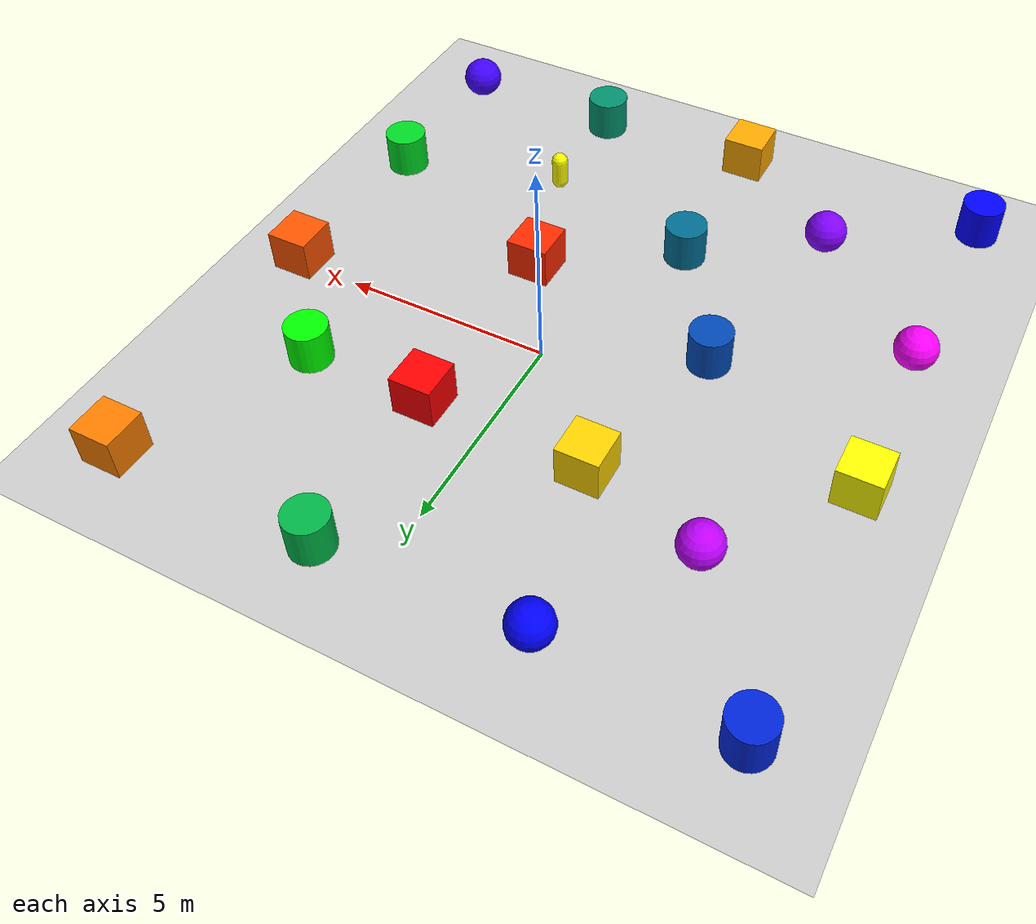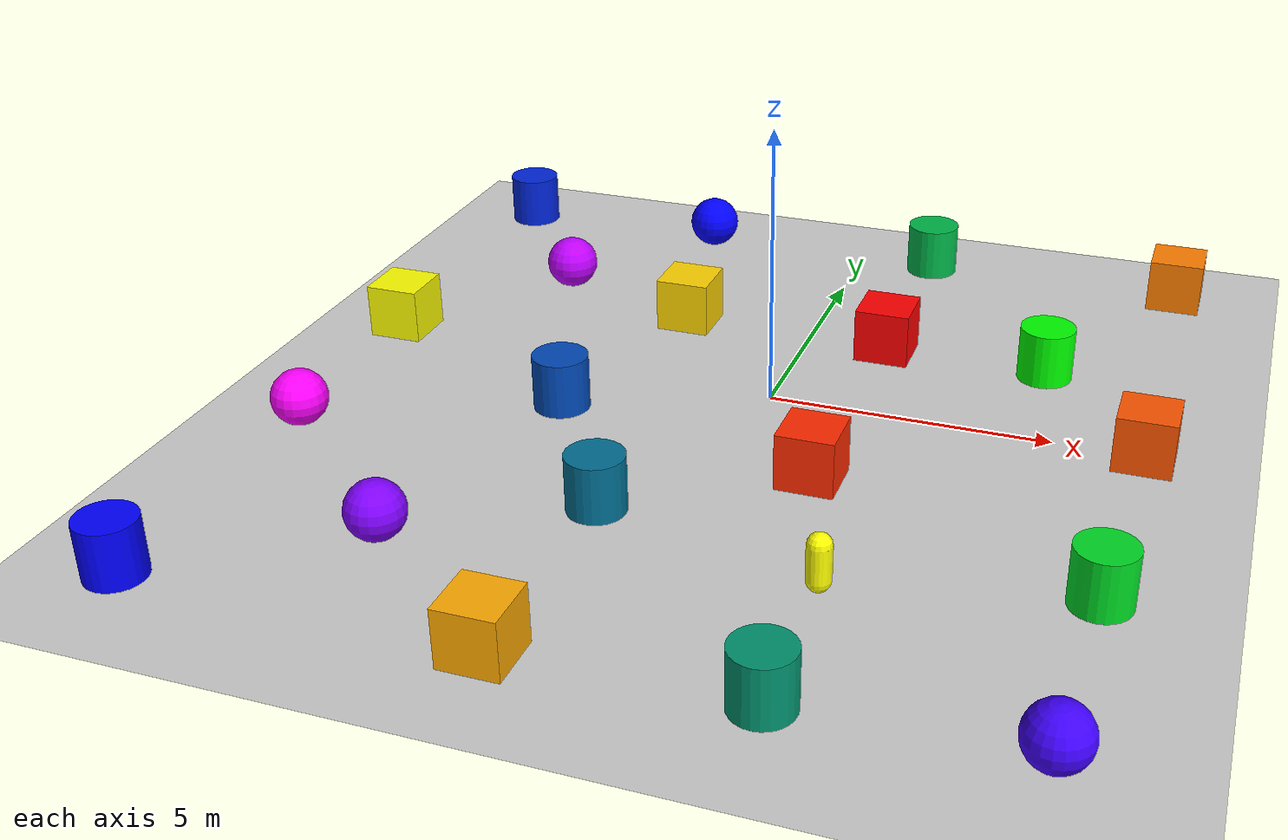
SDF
<?xml version="1.0"?>
<sdf version='1.9'>
  <world name='empty'>
    <physics name='1ms' type='ignored'>
      <max_step_size>0.001</max_step_size>
      <real_time_factor>1.0</real_time_factor>
      <real_time_update_rate>1000</real_time_update_rate>
    </physics>
    <plugin name='ignition::gazebo::systems::Physics' filename='libignition-gazebo-physics-system.so'/>
    <plugin name='ignition::gazebo::systems::UserCommands' filename='libignition-gazebo-user-commands-system.so'/>
    <plugin name='ignition::gazebo::systems::SceneBroadcaster' filename='libignition-gazebo-scene-broadcaster-system.so'/>
    <plugin name='ignition::gazebo::systems::Sensors' filename='libignition-gazebo-sensors-system.so'>
      <render_engine>ogre2</render_engine>
    </plugin>
    <plugin name='ignition::gazebo::systems::Imu' filename='libignition-gazebo-imu-system.so'/>
    <plugin name='ignition::gazebo::systems::Contact' filename='libignition-gazebo-contact-system.so'/>
    <gravity>0 0 -9.8</gravity>
    <magnetic_field>6e-06 2.3e-05 -4.2e-05</magnetic_field>
    <atmosphere type='adiabatic'/>
    <scene>
      <ambient>0.4 0.4 0.4 1</ambient>
      <background>0.7 0.7 0.7 1</background>
      <shadows>true</shadows>
    </scene>
    <model name='ground_plane'>
      <static>true</static>
      <link name='link'>
        <collision name='collision'>
          <geometry>
            <plane>
              <normal>0 0 1</normal>
              <size>100 100</size>
            </plane>
          </geometry>
          <surface>
            <friction>
              <ode/>
            </friction>
            <bounce/>
            <contact/>
          </surface>
        </collision>
        <visual name='visual'>
          <geometry>
            <plane>
              <normal>0 0 1</normal>
              <size>100 100</size>
            </plane>
          </geometry>
          <material>
            <ambient>0.8 0.8 0.8 1</ambient>
            <diffuse>0.8 0.8 0.8 1</diffuse>
            <specular>0.8 0.8 0.8 1</specular>
          </material>
        </visual>
        <pose>0 0 0 0 -0 0</pose>
        <inertial>
          <pose>0 0 0 0 -0 0</pose>
          <mass>1</mass>
          <inertia>
            <ixx>1</ixx>
            <ixy>0</ixy>
            <ixz>0</ixz>
            <iyy>1</iyy>
            <iyz>0</iyz>
            <izz>1</izz>
          </inertia>
        </inertial>
        <enable_wind>false</enable_wind>
      </link>
      <pose>0 0 0 0 -0 0</pose>
      <self_collide>false</self_collide>
    </model>
    <model name='box'>
      <pose>1.51163 2.42865 0.5 0 0 -0</pose>
      <link name='box_link'>
        <inertial>
          <inertia>
            <ixx>0.16666</ixx>
            <ixy>0</ixy>
            <ixz>0</ixz>
            <iyy>0.16666</iyy>
            <iyz>0</iyz>
            <izz>0.16666</izz>
          </inertia>
          <mass>1</mass>
          <pose>0 0 0 0 -0 0</pose>
        </inertial>
        <collision name='box_collision'>
          <geometry>
            <box>
              <size>1 1 1</size>
            </box>
          </geometry>
          <surface>
            <friction>
              <ode/>
            </friction>
            <bounce/>
            <contact/>
          </surface>
        </collision>
        <visual name='box_visual'>
          <geometry>
            <box>
              <size>1 1 1</size>
            </box>
          </geometry>
          <material>
            <ambient>1 0 0 1</ambient>
            <diffuse>1 0 0 1</diffuse>
            <specular>1 1 1 1</specular>
          </material>
        </visual>
        <pose>0 0 0 0 -0 0</pose>
        <enable_wind>false</enable_wind>
      </link>
      <static>false</static>
      <self_collide>false</self_collide>
    </model>
    <model name='box_0'>
      <pose>1.46819 -2.47228 0.5 0 0 -0</pose>
      <link name='box_link'>
        <inertial>
          <inertia>
            <ixx>0.16666</ixx>
            <ixy>0</ixy>
            <ixz>0</ixz>
            <iyy>0.16666</iyy>
            <iyz>0</iyz>
            <izz>0.16666</izz>
          </inertia>
          <mass>1</mass>
          <pose>0 0 0 0 -0 0</pose>
        </inertial>
        <collision name='box_collision'>
          <geometry>
            <box>
              <size>1 1 1</size>
            </box>
          </geometry>
          <surface>
            <friction>
              <ode/>
            </friction>
            <bounce/>
            <contact/>
          </surface>
        </collision>
        <visual name='box_visual'>
          <geometry>
            <box>
              <size>1 1 1</size>
            </box>
          </geometry>
          <material>
            <ambient>1 0.1667 0 1</ambient>
            <diffuse>1 0.1667 0 1</diffuse>
            <specular>1 1 1 1</specular>
          </material>
        </visual>
        <pose>0 0 0 0 -0 0</pose>
        <enable_wind>false</enable_wind>
      </link>
      <static>false</static>
      <self_collide>false</self_collide>
    </model>
    <model name='cylinder'>
      <pose>4.47957 2.41239 0.499999 -0 0 -0</pose>
      <link name='cylinder_link'>
        <inertial>
          <inertia>
            <ixx>0.14580000000000001</ixx>
            <ixy>0</ixy>
            <ixz>0</ixz>
            <iyy>0.14580000000000001</iyy>
            <iyz>0</iyz>
            <izz>0.125</izz>
          </inertia>
          <mass>1</mass>
          <pose>0 0 0 0 -0 0</pose>
        </inertial>
        <collision name='cylinder_collision'>
          <geometry>
            <cylinder>
              <radius>0.5</radius>
              <length>1</length>
            </cylinder>
          </geometry>
          <surface>
            <friction>
              <ode/>
            </friction>
            <bounce/>
            <contact/>
          </surface>
        </collision>
        <visual name='cylinder_visual'>
          <geometry>
            <cylinder>
              <radius>0.5</radius>
              <length>1</length>
            </cylinder>
          </geometry>
          <material>
            <ambient>0 1 0 1</ambient>
            <diffuse>0 1 0 1</diffuse>
            <specular>1 1 1 1</specular>
          </material>
        </visual>
        <pose>0 0 0 0 -0 0</pose>
        <enable_wind>false</enable_wind>
      </link>
      <static>false</static>
      <self_collide>false</self_collide>
    </model>
    <model name='box_1'>
      <pose>6.54148 -0.137706 0.5 0 0 -0</pose>
      <link name='box_link'>
        <inertial>
          <inertia>
            <ixx>0.16666</ixx>
            <ixy>0</ixy>
            <ixz>0</ixz>
            <iyy>0.16666</iyy>
            <iyz>0</iyz>
            <izz>0.16666</izz>
          </inertia>
          <mass>1</mass>
          <pose>0 0 0 0 -0 0</pose>
        </inertial>
        <collision name='box_collision'>
          <geometry>
            <box>
              <size>1 1 1</size>
            </box>
          </geometry>
          <surface>
            <friction>
              <ode/>
            </friction>
            <bounce/>
            <contact/>
          </surface>
        </collision>
        <visual name='box_visual'>
          <geometry>
            <box>
              <size>1 1 1</size>
            </box>
          </geometry>
          <material>
            <ambient>1 0.3333 0 1</ambient>
            <diffuse>1 0.3333 0 1</diffuse>
            <specular>1 1 1 1</specular>
          </material>
        </visual>
        <pose>0 0 0 0 -0 0</pose>
        <enable_wind>false</enable_wind>
      </link>
      <static>false</static>
      <self_collide>false</self_collide>
    </model>
    <model name='cylinder_0'>
      <pose>6.38648 -4.48019 0.499999 0 0 -0</pose>
      <link name='cylinder_link'>
        <inertial>
          <inertia>
            <ixx>0.14580000000000001</ixx>
            <ixy>0</ixy>
            <ixz>0</ixz>
            <iyy>0.14580000000000001</iyy>
            <iyz>0</iyz>
            <izz>0.125</izz>
          </inertia>
          <mass>1</mass>
          <pose>0 0 0 0 -0 0</pose>
        </inertial>
        <collision name='cylinder_collision'>
          <geometry>
            <cylinder>
              <radius>0.5</radius>
              <length>1</length>
            </cylinder>
          </geometry>
          <surface>
            <friction>
              <ode/>
            </friction>
            <bounce/>
            <contact/>
          </surface>
        </collision>
        <visual name='cylinder_visual'>
          <geometry>
            <cylinder>
              <radius>0.5</radius>
              <length>1</length>
            </cylinder>
          </geometry>
          <material>
            <ambient>0 0.8571 0.1429 1</ambient>
            <diffuse>0 0.8571 0.1429 1</diffuse>
            <specular>1 1 1 1</specular>
          </material>
        </visual>
        <pose>0 0 0 0 -0 0</pose>
        <enable_wind>false</enable_wind>
      </link>
      <static>false</static>
      <self_collide>false</self_collide>
    </model>
    <model name='box_2'>
      <pose>6.42284 6.47971 0.5 0 0 -0</pose>
      <link name='box_link'>
        <inertial>
          <inertia>
            <ixx>0.16666</ixx>
            <ixy>0</ixy>
            <ixz>0</ixz>
            <iyy>0.16666</iyy>
            <iyz>0</iyz>
            <izz>0.16666</izz>
          </inertia>
          <mass>1</mass>
          <pose>0 0 0 0 -0 0</pose>
        </inertial>
        <collision name='box_collision'>
          <geometry>
            <box>
              <size>1 1 1</size>
            </box>
          </geometry>
          <surface>
            <friction>
              <ode/>
            </friction>
            <bounce/>
            <contact/>
          </surface>
        </collision>
        <visual name='box_visual'>
          <geometry>
            <box>
              <size>1 1 1</size>
            </box>
          </geometry>
          <material>
            <ambient>1 0.5 0 1</ambient>
            <diffuse>1 0.5 0 1</diffuse>
            <specular>1 1 1 1</specular>
          </material>
        </visual>
        <pose>0 0 0 0 -0 0</pose>
        <enable_wind>false</enable_wind>
      </link>
      <static>false</static>
      <self_collide>false</self_collide>
    </model>
    <model name='cylinder_1'>
      <pose>1.47891 6.52709 0.499999 0 0 0</pose>
      <link name='cylinder_link'>
        <inertial>
          <inertia>
            <ixx>0.14580000000000001</ixx>
            <ixy>0</ixy>
            <ixz>0</ixz>
            <iyy>0.14580000000000001</iyy>
            <iyz>0</iyz>
            <izz>0.125</izz>
          </inertia>
          <mass>1</mass>
          <pose>0 0 0 0 -0 0</pose>
        </inertial>
        <collision name='cylinder_collision'>
          <geometry>
            <cylinder>
              <radius>0.5</radius>
              <length>1</length>
            </cylinder>
          </geometry>
          <surface>
            <friction>
              <ode/>
            </friction>
            <bounce/>
            <contact/>
          </surface>
        </collision>
        <visual name='cylinder_visual'>
          <geometry>
            <cylinder>
              <radius>0.5</radius>
              <length>1</length>
            </cylinder>
          </geometry>
          <material>
            <ambient>0 0.7143 0.2857 1</ambient>
            <diffuse>0 0.7143 0.2857 1</diffuse>
            <specular>1 1 1 1</specular>
          </material>
        </visual>
        <pose>0 0 0 0 -0 0</pose>
        <enable_wind>false</enable_wind>
      </link>
      <static>false</static>
      <self_collide>false</self_collide>
    </model>
    <model name='sphere'>
      <pose>-3.2681 6.40084 0.5 0 -0 0</pose>
      <link name='sphere_link'>
        <inertial>
          <inertia>
            <ixx>0.10000000000000001</ixx>
            <ixy>0</ixy>
            <ixz>0</ixz>
            <iyy>0.10000000000000001</iyy>
            <iyz>0</iyz>
            <izz>0.10000000000000001</izz>
          </inertia>
          <mass>1</mass>
          <pose>0 0 0 0 -0 0</pose>
        </inertial>
        <collision name='sphere_collision'>
          <geometry>
            <sphere>
              <radius>0.5</radius>
            </sphere>
          </geometry>
          <surface>
            <friction>
              <ode/>
            </friction>
            <bounce/>
            <contact/>
          </surface>
        </collision>
        <visual name='sphere_visual'>
          <geometry>
            <sphere>
              <radius>0.5</radius>
            </sphere>
          </geometry>
          <material>
            <ambient>0 0 1 1</ambient>
            <diffuse>0 0 1 1</diffuse>
            <specular>1 1 1 1</specular>
          </material>
        </visual>
        <pose>0 0 0 0 -0 0</pose>
        <enable_wind>false</enable_wind>
      </link>
      <static>false</static>
      <self_collide>false</self_collide>
    </model>
    <model name='sphere_0'>
      <pose>6.30164 -8.20064 0.5 0 -0 0</pose>
      <link name='sphere_link'>
        <inertial>
          <inertia>
            <ixx>0.10000000000000001</ixx>
            <ixy>0</ixy>
            <ixz>0</ixz>
            <iyy>0.10000000000000001</iyy>
            <iyz>0</iyz>
            <izz>0.10000000000000001</izz>
          </inertia>
          <mass>1</mass>
          <pose>0 0 0 0 -0 0</pose>
        </inertial>
        <collision name='sphere_collision'>
          <geometry>
            <sphere>
              <radius>0.5</radius>
            </sphere>
          </geometry>
          <surface>
            <friction>
              <ode/>
            </friction>
            <bounce/>
            <contact/>
          </surface>
        </collision>
        <visual name='sphere_visual'>
          <geometry>
            <sphere>
              <radius>0.5</radius>
            </sphere>
          </geometry>
          <material>
            <ambient>0.25 0 1 1</ambient>
            <diffuse>0.25 0 1 1</diffuse>
            <specular>1 1 1 1</specular>
          </material>
        </visual>
        <pose>0 0 0 0 -0 0</pose>
        <enable_wind>false</enable_wind>
      </link>
      <static>false</static>
      <self_collide>false</self_collide>
    </model>
    <model name='cylinder_2'>
      <pose>2.47302 -8.27325 0.499999 0 0 -0</pose>
      <link name='cylinder_link'>
        <inertial>
          <inertia>
            <ixx>0.14580000000000001</ixx>
            <ixy>0</ixy>
            <ixz>0</ixz>
            <iyy>0.14580000000000001</iyy>
            <iyz>0</iyz>
            <izz>0.125</izz>
          </inertia>
          <mass>1</mass>
          <pose>0 0 0 0 -0 0</pose>
        </inertial>
        <collision name='cylinder_collision'>
          <geometry>
            <cylinder>
              <radius>0.5</radius>
              <length>1</length>
            </cylinder>
          </geometry>
          <surface>
            <friction>
              <ode/>
            </friction>
            <bounce/>
            <contact/>
          </surface>
        </collision>
        <visual name='cylinder_visual'>
          <geometry>
            <cylinder>
              <radius>0.5</radius>
              <length>1</length>
            </cylinder>
          </geometry>
          <material>
            <ambient>0 0.5714 0.4286 1</ambient>
            <diffuse>0 0.5714 0.4286 1</diffuse>
            <specular>1 1 1 1</specular>
          </material>
        </visual>
        <pose>0 0 0 0 -0 0</pose>
        <enable_wind>false</enable_wind>
      </link>
      <static>false</static>
      <self_collide>false</self_collide>
    </model>
    <model name='box_3'>
      <pose>-1.50587 -8.44194 0.5 0 0 -0</pose>
      <link name='box_link'>
        <inertial>
          <inertia>
            <ixx>0.16666</ixx>
            <ixy>0</ixy>
            <ixz>0</ixz>
            <iyy>0.16666</iyy>
            <iyz>0</iyz>
            <izz>0.16666</izz>
          </inertia>
          <mass>1</mass>
          <pose>0 0 0 0 -0 0</pose>
        </inertial>
        <collision name='box_collision'>
          <geometry>
            <box>
              <size>1 1 1</size>
            </box>
          </geometry>
          <surface>
            <friction>
              <ode/>
            </friction>
            <bounce/>
            <contact/>
          </surface>
        </collision>
        <visual name='box_visual'>
          <geometry>
            <box>
              <size>1 1 1</size>
            </box>
          </geometry>
          <material>
            <ambient>1 0.6667 0 1</ambient>
            <diffuse>1 0.6667 0 1</diffuse>
            <specular>1 1 1 1</specular>
          </material>
        </visual>
        <pose>0 0 0 0 -0 0</pose>
        <enable_wind>false</enable_wind>
      </link>
      <static>false</static>
      <self_collide>false</self_collide>
    </model>
    <model name='cylinder_3'>
      <pose>-1.49364 -4.4313 0.499999 0 -0 -0</pose>
      <link name='cylinder_link'>
        <inertial>
          <inertia>
            <ixx>0.14580000000000001</ixx>
            <ixy>0</ixy>
            <ixz>0</ixz>
            <iyy>0.14580000000000001</iyy>
            <iyz>0</iyz>
            <izz>0.125</izz>
          </inertia>
          <mass>1</mass>
          <pose>0 0 0 0 -0 0</pose>
        </inertial>
        <collision name='cylinder_collision'>
          <geometry>
            <cylinder>
              <radius>0.5</radius>
              <length>1</length>
            </cylinder>
          </geometry>
          <surface>
            <friction>
              <ode/>
            </friction>
            <bounce/>
            <contact/>
          </surface>
        </collision>
        <visual name='cylinder_visual'>
          <geometry>
            <cylinder>
              <radius>0.5</radius>
              <length>1</length>
            </cylinder>
          </geometry>
          <material>
            <ambient>0 0.4286 0.5714 1</ambient>
            <diffuse>0 0.4286 0.5714 1</diffuse>
            <specular>1 1 1 1</specular>
          </material>
        </visual>
        <pose>0 0 0 0 -0 0</pose>
        <enable_wind>false</enable_wind>
      </link>
      <static>false</static>
      <self_collide>false</self_collide>
    </model>
    <model name='box_4'>
      <pose>-2.42864 2.52073 0.5 0 0 -0</pose>
      <link name='box_link'>
        <inertial>
          <inertia>
            <ixx>0.16666</ixx>
            <ixy>0</ixy>
            <ixz>0</ixz>
            <iyy>0.16666</iyy>
            <iyz>0</iyz>
            <izz>0.16666</izz>
          </inertia>
          <mass>1</mass>
          <pose>0 0 0 0 -0 0</pose>
        </inertial>
        <collision name='box_collision'>
          <geometry>
            <box>
              <size>1 1 1</size>
            </box>
          </geometry>
          <surface>
            <friction>
              <ode/>
            </friction>
            <bounce/>
            <contact/>
          </surface>
        </collision>
        <visual name='box_visual'>
          <geometry>
            <box>
              <size>1 1 1</size>
            </box>
          </geometry>
          <material>
            <ambient>1 0.8333 0 1</ambient>
            <diffuse>1 0.8333 0 1</diffuse>
            <specular>1 1 1 1</specular>
          </material>
        </visual>
        <pose>0 0 0 0 -0 0</pose>
        <enable_wind>false</enable_wind>
      </link>
      <static>false</static>
      <self_collide>false</self_collide>
    </model>
    <model name='cylinder_4'>
      <pose>-3.4058 -1.44405 0.499999 0 0 -0</pose>
      <link name='cylinder_link'>
        <inertial>
          <inertia>
            <ixx>0.14580000000000001</ixx>
            <ixy>0</ixy>
            <ixz>0</ixz>
            <iyy>0.14580000000000001</iyy>
            <iyz>0</iyz>
            <izz>0.125</izz>
          </inertia>
          <mass>1</mass>
          <pose>0 0 0 0 -0 0</pose>
        </inertial>
        <collision name='cylinder_collision'>
          <geometry>
            <cylinder>
              <radius>0.5</radius>
              <length>1</length>
            </cylinder>
          </geometry>
          <surface>
            <friction>
              <ode/>
            </friction>
            <bounce/>
            <contact/>
          </surface>
        </collision>
        <visual name='cylinder_visual'>
          <geometry>
            <cylinder>
              <radius>0.5</radius>
              <length>1</length>
            </cylinder>
          </geometry>
          <material>
            <ambient>0 0.2857 0.7143 1</ambient>
            <diffuse>0 0.2857 0.7143 1</diffuse>
            <specular>1 1 1 1</specular>
          </material>
        </visual>
        <pose>0 0 0 0 -0 0</pose>
        <enable_wind>false</enable_wind>
      </link>
      <static>false</static>
      <self_collide>false</self_collide>
    </model>
    <model name='sphere_1'>
      <pose>-4.35428 -6.28047 0.5 0 -0 0</pose>
      <link name='sphere_link'>
        <inertial>
          <inertia>
            <ixx>0.10000000000000001</ixx>
            <ixy>0</ixy>
            <ixz>0</ixz>
            <iyy>0.10000000000000001</iyy>
            <iyz>0</iyz>
            <izz>0.10000000000000001</izz>
          </inertia>
          <mass>1</mass>
          <pose>0 0 0 0 -0 0</pose>
        </inertial>
        <collision name='sphere_collision'>
          <geometry>
            <sphere>
              <radius>0.5</radius>
            </sphere>
          </geometry>
          <surface>
            <friction>
              <ode/>
            </friction>
            <bounce/>
            <contact/>
          </surface>
        </collision>
        <visual name='sphere_visual'>
          <geometry>
            <sphere>
              <radius>0.5</radius>
            </sphere>
          </geometry>
          <material>
            <ambient>0.5 0 1 1</ambient>
            <diffuse>0.5 0 1 1</diffuse>
            <specular>1 1 1 1</specular>
          </material>
        </visual>
        <pose>0 0 0 0 -0 0</pose>
        <enable_wind>false</enable_wind>
      </link>
      <static>false</static>
      <self_collide>false</self_collide>
    </model>
    <model name='sphere_2'>
      <pose>-5.29746 3.41684 0.5 0 -0 0</pose>
      <link name='sphere_link'>
        <inertial>
          <inertia>
            <ixx>0.10000000000000001</ixx>
            <ixy>0</ixy>
            <ixz>0</ixz>
            <iyy>0.10000000000000001</iyy>
            <iyz>0</iyz>
            <izz>0.10000000000000001</izz>
          </inertia>
          <mass>1</mass>
          <pose>0 0 0 0 -0 0</pose>
        </inertial>
        <collision name='sphere_collision'>
          <geometry>
            <sphere>
              <radius>0.5</radius>
            </sphere>
          </geometry>
          <surface>
            <friction>
              <ode/>
            </friction>
            <bounce/>
            <contact/>
          </surface>
        </collision>
        <visual name='sphere_visual'>
          <geometry>
            <sphere>
              <radius>0.5</radius>
            </sphere>
          </geometry>
          <material>
            <ambient>0.75 0 1 1</ambient>
            <diffuse>0.75 0 1 1</diffuse>
            <specular>1 1 1 1</specular>
          </material>
        </visual>
        <pose>0 0 0 0 -0 0</pose>
        <enable_wind>false</enable_wind>
      </link>
      <static>false</static>
      <self_collide>false</self_collide>
    </model>
    <model name='cylinder_5'>
      <pose>-7.54056 6.51442 0.499999 -0 -0 -0</pose>
      <link name='cylinder_link'>
        <inertial>
          <inertia>
            <ixx>0.14580000000000001</ixx>
            <ixy>0</ixy>
            <ixz>0</ixz>
            <iyy>0.14580000000000001</iyy>
            <iyz>0</iyz>
            <izz>0.125</izz>
          </inertia>
          <mass>1</mass>
          <pose>0 0 0 0 -0 0</pose>
        </inertial>
        <collision name='cylinder_collision'>
          <geometry>
            <cylinder>
              <radius>0.5</radius>
              <length>1</length>
            </cylinder>
          </geometry>
          <surface>
            <friction>
              <ode/>
            </friction>
            <bounce/>
            <contact/>
          </surface>
        </collision>
        <visual name='cylinder_visual'>
          <geometry>
            <cylinder>
              <radius>0.5</radius>
              <length>1</length>
            </cylinder>
          </geometry>
          <material>
            <ambient>0 0.1429 0.8571 1</ambient>
            <diffuse>0 0.1429 0.8571 1</diffuse>
            <specular>1 1 1 1</specular>
          </material>
        </visual>
        <pose>0 0 0 0 -0 0</pose>
        <enable_wind>false</enable_wind>
      </link>
      <static>false</static>
      <self_collide>false</self_collide>
    </model>
    <model name='cylinder_6'>
      <pose>-7.53135 -8.42408 0.499999 0 0 -0</pose>
      <link name='cylinder_link'>
        <inertial>
          <inertia>
            <ixx>0.14580000000000001</ixx>
            <ixy>0</ixy>
            <ixz>0</ixz>
            <iyy>0.14580000000000001</iyy>
            <iyz>0</iyz>
            <izz>0.125</izz>
          </inertia>
          <mass>1</mass>
          <pose>0 0 0 0 -0 0</pose>
        </inertial>
        <collision name='cylinder_collision'>
          <geometry>
            <cylinder>
              <radius>0.5</radius>
              <length>1</length>
            </cylinder>
          </geometry>
          <surface>
            <friction>
              <ode/>
            </friction>
            <bounce/>
            <contact/>
          </surface>
        </collision>
        <visual name='cylinder_visual'>
          <geometry>
            <cylinder>
              <radius>0.5</radius>
              <length>1</length>
            </cylinder>
          </geometry>
          <material>
            <ambient>0 0 1 1</ambient>
            <diffuse>0 0 1 1</diffuse>
            <specular>1 1 1 1</specular>
          </material>
        </visual>
        <pose>0 0 0 0 -0 0</pose>
        <enable_wind>false</enable_wind>
      </link>
      <static>false</static>
      <self_collide>false</self_collide>
    </model>
    <model name='box_5'>
      <pose>-7.52528 0.490923 0.5 0 0 0</pose>
      <link name='box_link'>
        <inertial>
          <inertia>
            <ixx>0.16666</ixx>
            <ixy>0</ixy>
            <ixz>0</ixz>
            <iyy>0.16666</iyy>
            <iyz>0</iyz>
            <izz>0.16666</izz>
          </inertia>
          <mass>1</mass>
          <pose>0 0 0 0 -0 0</pose>
        </inertial>
        <collision name='box_collision'>
          <geometry>
            <box>
              <size>1 1 1</size>
            </box>
          </geometry>
          <surface>
            <friction>
              <ode/>
            </friction>
            <bounce/>
            <contact/>
          </surface>
        </collision>
        <visual name='box_visual'>
          <geometry>
            <box>
              <size>1 1 1</size>
            </box>
          </geometry>
          <material>
            <ambient>1 1 0 1</ambient>
            <diffuse>1 1 0 1</diffuse>
            <specular>1 1 1 1</specular>
          </material>
        </visual>
        <pose>0 0 0 0 -0 0</pose>
        <enable_wind>false</enable_wind>
      </link>
      <static>false</static>
      <self_collide>false</self_collide>
    </model>
    <model name='sphere_3'>
      <pose>-7.41768 -3.46443 0.5 0 -0 0</pose>
      <link name='sphere_link'>
        <inertial>
          <inertia>
            <ixx>0.10000000000000001</ixx>
            <ixy>0</ixy>
            <ixz>0</ixz>
            <iyy>0.10000000000000001</iyy>
            <iyz>0</iyz>
            <izz>0.10000000000000001</izz>
          </inertia>
          <mass>1</mass>
          <pose>0 0 0 0 -0 0</pose>
        </inertial>
        <collision name='sphere_collision'>
          <geometry>
            <sphere>
              <radius>0.5</radius>
            </sphere>
          </geometry>
          <surface>
            <friction>
              <ode/>
            </friction>
            <bounce/>
            <contact/>
          </surface>
        </collision>
        <visual name='sphere_visual'>
          <geometry>
            <sphere>
              <radius>0.5</radius>
            </sphere>
          </geometry>
          <material>
            <ambient>1 0 1 1</ambient>
            <diffuse>1 0 1 1</diffuse>
            <specular>1 1 1 1</specular>
          </material>
        </visual>
        <pose>0 0 0 0 -0 0</pose>
        <enable_wind>false</enable_wind>
      </link>
      <static>false</static>
      <self_collide>false</self_collide>
    </model>
    <model name='capsule'>
      <pose>2.43947 -5.46746 0.5 0 -0 0</pose>
      <link name='capsule_link'>
        <inertial>
          <inertia>
            <ixx>0.074153999999999998</ixx>
            <ixy>0</ixy>
            <ixz>0</ixz>
            <iyy>0.074153999999999998</iyy>
            <iyz>0</iyz>
            <izz>0.018769000000000001</izz>
          </inertia>
          <mass>1</mass>
          <pose>0 0 0 0 -0 0</pose>
        </inertial>
        <collision name='capsule_collision'>
          <geometry>
            <capsule>
              <radius>0.20000000000000001</radius>
              <length>0.59999999999999998</length>
            </capsule>
          </geometry>
          <surface>
            <friction>
              <ode/>
            </friction>
            <bounce/>
            <contact/>
          </surface>
        </collision>
        <visual name='capsule_visual'>
          <geometry>
            <capsule>
              <radius>0.20000000000000001</radius>
              <length>0.59999999999999998</length>
            </capsule>
          </geometry>
          <material>
            <ambient>1 1 0 1</ambient>
            <diffuse>1 1 0 1</diffuse>
            <specular>1 1 1 1</specular>
          </material>
        </visual>
        <pose>0 0 0 0 -0 0</pose>
        <enable_wind>false</enable_wind>
      </link>
      <static>false</static>
      <self_collide>false</self_collide>
    </model>
    <light name='sun' type='directional'>
      <pose>0 0 10 0 -0 0</pose>
      <cast_shadows>true</cast_shadows>
      <intensity>1</intensity>
      <direction>-0.5 0.1 -0.9</direction>
      <diffuse>0.8 0.8 0.8 1</diffuse>
      <specular>0.2 0.2 0.2 1</specular>
      <attenuation>
        <range>1000</range>
        <linear>0.01</linear>
        <constant>0.90000000000000002</constant>
        <quadratic>0.001</quadratic>
      </attenuation>
      <spot>
        <inner_angle>0</inner_angle>
        <outer_angle>0</outer_angle>
        <falloff>0</falloff>
      </spot>
    </light>
  </world>
</sdf>
